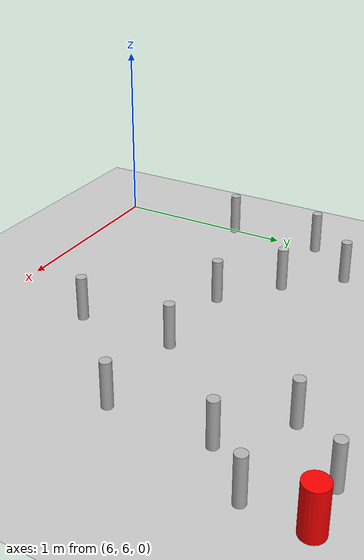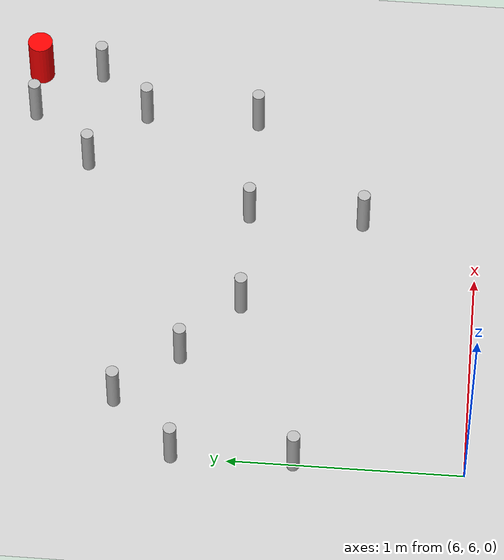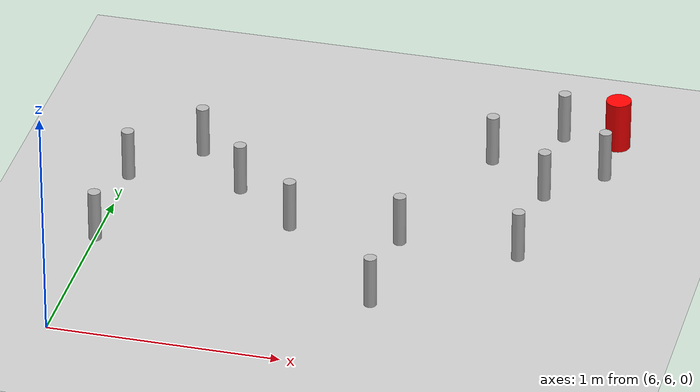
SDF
<sdf version="1.6">
 <world name="default">
  <model name="ground_plane">
   <static>1</static>
   <link name="link">
    <collision name="collision">
     <geometry><plane><normal>0 0 1</normal><size>100 100</size></plane></geometry>
     <surface><friction><ode><mu>100</mu><mu2>50</mu2></ode></friction></surface>
    </collision>
    <visual name="visual">
     <cast_shadows>0</cast_shadows>
     <geometry><plane><normal>0 0 1</normal><size>100 100</size></plane></geometry>
     <material>
      <script><uri>file://media/materials/scripts/gazebo.material</uri><name>Gazebo/Grey</name></script>
     </material>
    </visual>
   </link>
  </model>
  <model name="goal">
   <link name="link">
    <pose>0 0 0.115 0 -0 0</pose>
    <inertial>
     <mass>0.0005</mass>
     <inertia><ixx>0.00058</ixx><ixy>0</ixy><ixz>0</ixz><iyy>0.00058</iyy><iyz>0</iyz><izz>0.00019</izz></inertia>
    </inertial>
    <visual name="visual">
     <geometry><cylinder><radius>0.055</radius><length>0.23</length></cylinder></geometry>
     <material>
      <script>
       <uri>model://beer/materials/scripts</uri>
       <uri>model://beer/materials/textures</uri>
       <name>Beer/Diffuse</name>
      </script>
      <ambient>1 0 0 1</ambient>
      <diffuse>1 0 0 1</diffuse>
      <specular>0 0 0 1</specular>
      <emissive>0 0 0 1</emissive>
      <shader type="vertex"><normal_map>__default__</normal_map></shader>
     </material>
    </visual>
    <collision name="collision">
     <geometry><cylinder><radius>0.055</radius><length>0.23</length></cylinder></geometry>
     <surface>
      <friction>
       <ode><mu>1</mu><mu2>1</mu2><fdir1>0 0 0</fdir1><slip1>0</slip1><slip2>0</slip2></ode>
       <torsional>
        <coefficient>1</coefficient>
        <patch_radius>0</patch_radius>
        <surface_radius>0</surface_radius>
        <use_patch_radius>1</use_patch_radius>
        <ode><slip>0</slip></ode>
       </torsional>
      </friction>
      <bounce><restitution_coefficient>0</restitution_coefficient><threshold>1e+06</threshold></bounce>
      <contact>
       <collide_without_contact>0</collide_without_contact>
       <collide_without_contact_bitmask>1</collide_without_contact_bitmask>
       <collide_bitmask>1</collide_bitmask>
       <ode>
        <soft_cfm>0</soft_cfm>
        <soft_erp>0.2</soft_erp>
        <kp>1e+13</kp>
        <kd>1</kd>
        <max_vel>0.01</max_vel>
        <min_depth>0</min_depth>
       </ode>
       <bullet>
        <split_impulse>1</split_impulse>
        <split_impulse_penetration_threshold>-0.01</split_impulse_penetration_threshold>
        <soft_cfm>0</soft_cfm>
        <soft_erp>0.2</soft_erp>
        <kp>1e+13</kp>
        <kd>1</kd>
       </bullet>
      </contact>
     </surface>
    </collision>
   </link>
   <static>0</static>
   <pose>8.0 8.0 -9e-06 -1e-06 -4e-06 0</pose>
  </model>
  <model name="can6.261647392187.5">
   <link name="link">
    <pose>0 0 0.115 0 -0 0</pose>
    <inertial>
     <mass>0.39</mass>
     <inertia><ixx>0.00058</ixx><ixy>0</ixy><ixz>0</ixz><iyy>0.00058</iyy><iyz>0</iyz><izz>0.00019</izz></inertia>
    </inertial>
    <collision name="collision">
     <geometry><cylinder><radius>0.0275</radius><length>0.23</length></cylinder></geometry>
    </collision>
    <visual name="visual">
     <geometry><cylinder><radius>0.0275</radius><length>0.23</length></cylinder></geometry>
     <material>
      <script>
       <uri>model://beer/materials/scripts</uri>
       <uri>model://beer/materials/textures</uri>
       <name>Beer/Diffuse</name>
      </script>
     </material>
    </visual>
   </link>
   <pose>6.26164739218 7.5 -2e-06 1e-06 0 -9.5e-05</pose>
  </model>
  <model name="can6.07.23395077898">
   <link name="link">
    <pose>0 0 0.115 0 -0 0</pose>
    <inertial>
     <mass>0.39</mass>
     <inertia><ixx>0.00058</ixx><ixy>0</ixy><ixz>0</ixz><iyy>0.00058</iyy><iyz>0</iyz><izz>0.00019</izz></inertia>
    </inertial>
    <collision name="collision">
     <geometry><cylinder><radius>0.0275</radius><length>0.23</length></cylinder></geometry>
    </collision>
    <visual name="visual">
     <geometry><cylinder><radius>0.0275</radius><length>0.23</length></cylinder></geometry>
     <material>
      <script>
       <uri>model://beer/materials/scripts</uri>
       <uri>model://beer/materials/textures</uri>
       <name>Beer/Diffuse</name>
      </script>
     </material>
    </visual>
   </link>
   <pose>6.0 7.23395077898 -2e-06 1e-06 0 -9.5e-05</pose>
  </model>
  <model name="can7.263588575147.0">
   <link name="link">
    <pose>0 0 0.115 0 -0 0</pose>
    <inertial>
     <mass>0.39</mass>
     <inertia><ixx>0.00058</ixx><ixy>0</ixy><ixz>0</ixz><iyy>0.00058</iyy><iyz>0</iyz><izz>0.00019</izz></inertia>
    </inertial>
    <collision name="collision">
     <geometry><cylinder><radius>0.0275</radius><length>0.23</length></cylinder></geometry>
    </collision>
    <visual name="visual">
     <geometry><cylinder><radius>0.0275</radius><length>0.23</length></cylinder></geometry>
     <material>
      <script>
       <uri>model://beer/materials/scripts</uri>
       <uri>model://beer/materials/textures</uri>
       <name>Beer/Diffuse</name>
      </script>
     </material>
    </visual>
   </link>
   <pose>7.26358857514 7.0 -2e-06 1e-06 0 -9.5e-05</pose>
  </model>
  <model name="can7.760497419898.0">
   <link name="link">
    <pose>0 0 0.115 0 -0 0</pose>
    <inertial>
     <mass>0.39</mass>
     <inertia><ixx>0.00058</ixx><ixy>0</ixy><ixz>0</ixz><iyy>0.00058</iyy><iyz>0</iyz><izz>0.00019</izz></inertia>
    </inertial>
    <collision name="collision">
     <geometry><cylinder><radius>0.0275</radius><length>0.23</length></cylinder></geometry>
    </collision>
    <visual name="visual">
     <geometry><cylinder><radius>0.0275</radius><length>0.23</length></cylinder></geometry>
     <material>
      <script>
       <uri>model://beer/materials/scripts</uri>
       <uri>model://beer/materials/textures</uri>
       <name>Beer/Diffuse</name>
      </script>
     </material>
    </visual>
   </link>
   <pose>7.76049741989 8.0 -2e-06 1e-06 0 -9.5e-05</pose>
  </model>
  <model name="can7.777884202987.0">
   <link name="link">
    <pose>0 0 0.115 0 -0 0</pose>
    <inertial>
     <mass>0.39</mass>
     <inertia><ixx>0.00058</ixx><ixy>0</ixy><ixz>0</ixz><iyy>0.00058</iyy><iyz>0</iyz><izz>0.00019</izz></inertia>
    </inertial>
    <collision name="collision">
     <geometry><cylinder><radius>0.0275</radius><length>0.23</length></cylinder></geometry>
    </collision>
    <visual name="visual">
     <geometry><cylinder><radius>0.0275</radius><length>0.23</length></cylinder></geometry>
     <material>
      <script>
       <uri>model://beer/materials/scripts</uri>
       <uri>model://beer/materials/textures</uri>
       <name>Beer/Diffuse</name>
      </script>
     </material>
    </visual>
   </link>
   <pose>7.77788420298 7.0 -2e-06 1e-06 0 -9.5e-05</pose>
  </model>
  <model name="can6.06.71885183796">
   <link name="link">
    <pose>0 0 0.115 0 -0 0</pose>
    <inertial>
     <mass>0.39</mass>
     <inertia><ixx>0.00058</ixx><ixy>0</ixy><ixz>0</ixz><iyy>0.00058</iyy><iyz>0</iyz><izz>0.00019</izz></inertia>
    </inertial>
    <collision name="collision">
     <geometry><cylinder><radius>0.0275</radius><length>0.23</length></cylinder></geometry>
    </collision>
    <visual name="visual">
     <geometry><cylinder><radius>0.0275</radius><length>0.23</length></cylinder></geometry>
     <material>
      <script>
       <uri>model://beer/materials/scripts</uri>
       <uri>model://beer/materials/textures</uri>
       <name>Beer/Diffuse</name>
      </script>
     </material>
    </visual>
   </link>
   <pose>6.0 6.71885183796 -2e-06 1e-06 0 -9.5e-05</pose>
  </model>
  <model name="can8.07.72289879966">
   <link name="link">
    <pose>0 0 0.115 0 -0 0</pose>
    <inertial>
     <mass>0.39</mass>
     <inertia><ixx>0.00058</ixx><ixy>0</ixy><ixz>0</ixz><iyy>0.00058</iyy><iyz>0</iyz><izz>0.00019</izz></inertia>
    </inertial>
    <collision name="collision">
     <geometry><cylinder><radius>0.0275</radius><length>0.23</length></cylinder></geometry>
    </collision>
    <visual name="visual">
     <geometry><cylinder><radius>0.0275</radius><length>0.23</length></cylinder></geometry>
     <material>
      <script>
       <uri>model://beer/materials/scripts</uri>
       <uri>model://beer/materials/textures</uri>
       <name>Beer/Diffuse</name>
      </script>
     </material>
    </visual>
   </link>
   <pose>8.0 7.72289879966 -2e-06 1e-06 0 -9.5e-05</pose>
  </model>
  <model name="can7.258645447676.5">
   <link name="link">
    <pose>0 0 0.115 0 -0 0</pose>
    <inertial>
     <mass>0.39</mass>
     <inertia><ixx>0.00058</ixx><ixy>0</ixy><ixz>0</ixz><iyy>0.00058</iyy><iyz>0</iyz><izz>0.00019</izz></inertia>
    </inertial>
    <collision name="collision">
     <geometry><cylinder><radius>0.0275</radius><length>0.23</length></cylinder></geometry>
    </collision>
    <visual name="visual">
     <geometry><cylinder><radius>0.0275</radius><length>0.23</length></cylinder></geometry>
     <material>
      <script>
       <uri>model://beer/materials/scripts</uri>
       <uri>model://beer/materials/textures</uri>
       <name>Beer/Diffuse</name>
      </script>
     </material>
    </visual>
   </link>
   <pose>7.25864544767 6.5 -2e-06 1e-06 0 -9.5e-05</pose>
  </model>
  <model name="can7.780492458577.5">
   <link name="link">
    <pose>0 0 0.115 0 -0 0</pose>
    <inertial>
     <mass>0.39</mass>
     <inertia><ixx>0.00058</ixx><ixy>0</ixy><ixz>0</ixz><iyy>0.00058</iyy><iyz>0</iyz><izz>0.00019</izz></inertia>
    </inertial>
    <collision name="collision">
     <geometry><cylinder><radius>0.0275</radius><length>0.23</length></cylinder></geometry>
    </collision>
    <visual name="visual">
     <geometry><cylinder><radius>0.0275</radius><length>0.23</length></cylinder></geometry>
     <material>
      <script>
       <uri>model://beer/materials/scripts</uri>
       <uri>model://beer/materials/textures</uri>
       <name>Beer/Diffuse</name>
      </script>
     </material>
    </visual>
   </link>
   <pose>7.78049245857 7.5 -2e-06 1e-06 0 -9.5e-05</pose>
  </model>
  <model name="can6.57.23821484983">
   <link name="link">
    <pose>0 0 0.115 0 -0 0</pose>
    <inertial>
     <mass>0.39</mass>
     <inertia><ixx>0.00058</ixx><ixy>0</ixy><ixz>0</ixz><iyy>0.00058</iyy><iyz>0</iyz><izz>0.00019</izz></inertia>
    </inertial>
    <collision name="collision">
     <geometry><cylinder><radius>0.0275</radius><length>0.23</length></cylinder></geometry>
    </collision>
    <visual name="visual">
     <geometry><cylinder><radius>0.0275</radius><length>0.23</length></cylinder></geometry>
     <material>
      <script>
       <uri>model://beer/materials/scripts</uri>
       <uri>model://beer/materials/textures</uri>
       <name>Beer/Diffuse</name>
      </script>
     </material>
    </visual>
   </link>
   <pose>6.5 7.23821484983 -2e-06 1e-06 0 -9.5e-05</pose>
  </model>
  <model name="can6.781654667957.0">
   <link name="link">
    <pose>0 0 0.115 0 -0 0</pose>
    <inertial>
     <mass>0.39</mass>
     <inertia><ixx>0.00058</ixx><ixy>0</ixy><ixz>0</ixz><iyy>0.00058</iyy><iyz>0</iyz><izz>0.00019</izz></inertia>
    </inertial>
    <collision name="collision">
     <geometry><cylinder><radius>0.0275</radius><length>0.23</length></cylinder></geometry>
    </collision>
    <visual name="visual">
     <geometry><cylinder><radius>0.0275</radius><length>0.23</length></cylinder></geometry>
     <material>
      <script>
       <uri>model://beer/materials/scripts</uri>
       <uri>model://beer/materials/textures</uri>
       <name>Beer/Diffuse</name>
      </script>
     </material>
    </visual>
   </link>
   <pose>6.78165466795 7.0 -2e-06 1e-06 0 -9.5e-05</pose>
  </model>
  <model name="can7.57.73664037109">
   <link name="link">
    <pose>0 0 0.115 0 -0 0</pose>
    <inertial>
     <mass>0.39</mass>
     <inertia><ixx>0.00058</ixx><ixy>0</ixy><ixz>0</ixz><iyy>0.00058</iyy><iyz>0</iyz><izz>0.00019</izz></inertia>
    </inertial>
    <collision name="collision">
     <geometry><cylinder><radius>0.0275</radius><length>0.23</length></cylinder></geometry>
    </collision>
    <visual name="visual">
     <geometry><cylinder><radius>0.0275</radius><length>0.23</length></cylinder></geometry>
     <material>
      <script>
       <uri>model://beer/materials/scripts</uri>
       <uri>model://beer/materials/textures</uri>
       <name>Beer/Diffuse</name>
      </script>
     </material>
    </visual>
   </link>
   <pose>7.5 7.73664037109 -2e-06 1e-06 0 -9.5e-05</pose>
  </model>
 </world>
</sdf>
